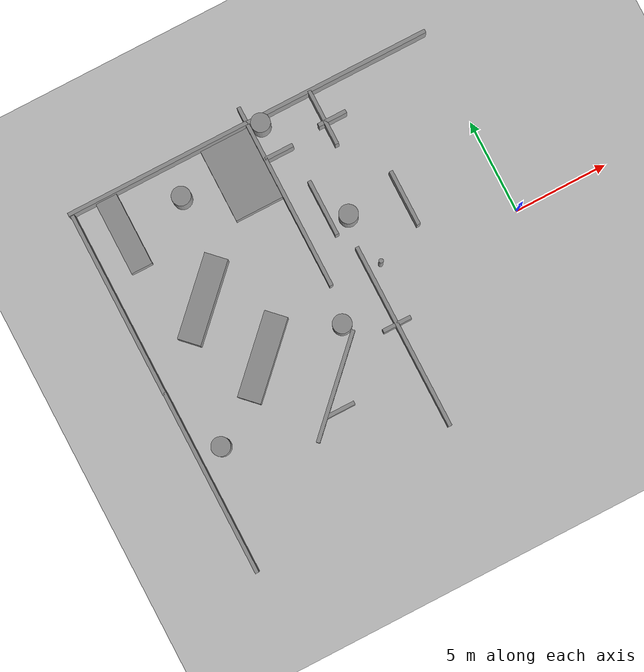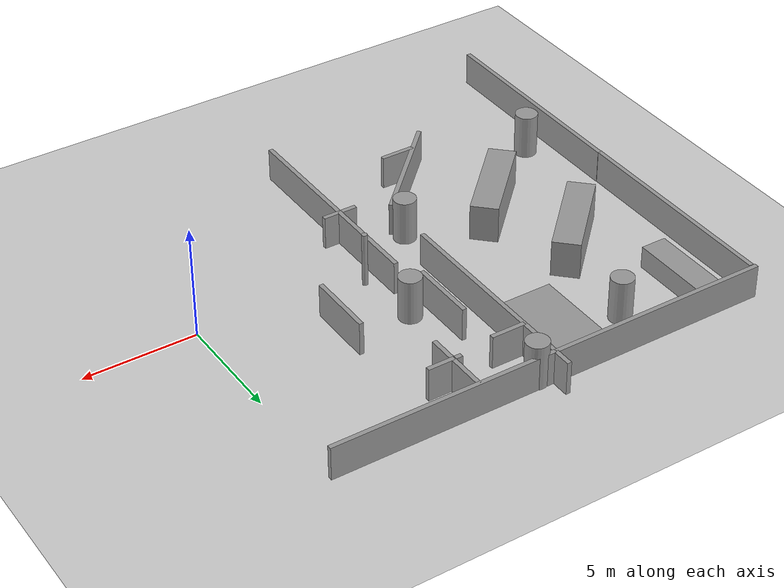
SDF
<sdf version="1.7">
 <world name="default">
  <model name="ground_plane">
   <static>1</static>
   <link name="link">
    <collision name="collision">
     <geometry><plane><normal>0 0 1</normal><size>100 100</size></plane></geometry>
     <surface><friction><ode><mu>100</mu><mu2>50</mu2></ode></friction></surface>
    </collision>
    <visual name="visual">
     <cast_shadows>0</cast_shadows>
     <geometry><plane><normal>0 0 1</normal><size>100 100</size></plane></geometry>
     <material>
      <script><uri>file://media/materials/scripts/gazebo.material</uri><name>Gazebo/Grey</name></script>
     </material>
    </visual>
   </link>
  </model>
  <model name="wall_10x3_clone">
   <link name="link">
    <inertial>
     <mass>1</mass>
     <inertia>
      <ixx>0.166667</ixx>
      <ixy>0</ixy>
      <ixz>0</ixz>
      <iyy>0.166667</iyy>
      <iyz>0</iyz>
      <izz>0.166667</izz>
     </inertia>
    </inertial>
    <visual name="visual">
     <geometry><box><size>10 0.2 1.5</size></box></geometry>
     <material>
      <script><name>Gazebo/Grey</name><uri>file://media/materials/scripts/gazebo.material</uri></script>
      <shader type="pixel"><normal_map>__default__</normal_map></shader>
      <ambient>0.3 0.3 0.3 1</ambient>
      <diffuse>0.7 0.7 0.7 1</diffuse>
      <specular>0.01 0.01 0.01 1</specular>
      <emissive>0 0 0 1</emissive>
     </material>
    </visual>
    <collision name="collision">
     <geometry><box><size>10 0.2 1.5</size></box></geometry>
     <surface>
      <friction>
       <ode><mu>1</mu><mu2>1</mu2><fdir1>0 0 0</fdir1><slip1>0</slip1><slip2>0</slip2></ode>
       <torsional>
        <coefficient>1</coefficient>
        <patch_radius>0</patch_radius>
        <surface_radius>0</surface_radius>
        <use_patch_radius>1</use_patch_radius>
        <ode><slip>0</slip></ode>
       </torsional>
      </friction>
      <bounce><restitution_coefficient>0</restitution_coefficient><threshold>1e+06</threshold></bounce>
      <contact>
       <collide_without_contact>0</collide_without_contact>
       <collide_without_contact_bitmask>1</collide_without_contact_bitmask>
       <collide_bitmask>1</collide_bitmask>
       <ode>
        <soft_cfm>0</soft_cfm>
        <soft_erp>0.2</soft_erp>
        <kp>1e+13</kp>
        <kd>1</kd>
        <max_vel>0.01</max_vel>
        <min_depth>0</min_depth>
       </ode>
       <bullet>
        <split_impulse>1</split_impulse>
        <split_impulse_penetration_threshold>-0.01</split_impulse_penetration_threshold>
        <soft_cfm>0</soft_cfm>
        <soft_erp>0.2</soft_erp>
        <kp>1e+13</kp>
        <kd>1</kd>
       </bullet>
      </contact>
     </surface>
    </collision>
   </link>
   <static>1</static>
   <pose>-5 10 0.75 0 -0 0</pose>
  </model>
  <model name="wall_10x3_clone_3_clone">
   <link name="link">
    <inertial>
     <mass>1</mass>
     <inertia>
      <ixx>0.166667</ixx>
      <ixy>0</ixy>
      <ixz>0</ixz>
      <iyy>0.166667</iyy>
      <iyz>0</iyz>
      <izz>0.166667</izz>
     </inertia>
    </inertial>
    <visual name="visual">
     <geometry><box><size>10 0.2 1.5</size></box></geometry>
     <material>
      <script><name>Gazebo/Grey</name><uri>file://media/materials/scripts/gazebo.material</uri></script>
      <shader type="pixel"><normal_map>__default__</normal_map></shader>
      <ambient>0.3 0.3 0.3 1</ambient>
      <diffuse>0.7 0.7 0.7 1</diffuse>
      <specular>0.01 0.01 0.01 1</specular>
      <emissive>0 0 0 1</emissive>
     </material>
    </visual>
    <collision name="collision">
     <geometry><box><size>10 0.2 1.5</size></box></geometry>
     <surface>
      <friction>
       <ode><mu>1</mu><mu2>1</mu2><fdir1>0 0 0</fdir1><slip1>0</slip1><slip2>0</slip2></ode>
       <torsional>
        <coefficient>1</coefficient>
        <patch_radius>0</patch_radius>
        <surface_radius>0</surface_radius>
        <use_patch_radius>1</use_patch_radius>
        <ode><slip>0</slip></ode>
       </torsional>
      </friction>
      <bounce><restitution_coefficient>0</restitution_coefficient><threshold>1e+06</threshold></bounce>
      <contact>
       <collide_without_contact>0</collide_without_contact>
       <collide_without_contact_bitmask>1</collide_without_contact_bitmask>
       <collide_bitmask>1</collide_bitmask>
       <ode>
        <soft_cfm>0</soft_cfm>
        <soft_erp>0.2</soft_erp>
        <kp>1e+13</kp>
        <kd>1</kd>
        <max_vel>0.01</max_vel>
        <min_depth>0</min_depth>
       </ode>
       <bullet>
        <split_impulse>1</split_impulse>
        <split_impulse_penetration_threshold>-0.01</split_impulse_penetration_threshold>
        <soft_cfm>0</soft_cfm>
        <soft_erp>0.2</soft_erp>
        <kp>1e+13</kp>
        <kd>1</kd>
       </bullet>
      </contact>
     </surface>
    </collision>
   </link>
   <static>1</static>
   <pose>-10 5.88215 0.75 0 -0 1.5708</pose>
  </model>
  <model name="wall_10x3_clone_3_clone_0_clone_clone_clone_clone_6_clone">
   <link name="link">
    <inertial>
     <mass>1</mass>
     <inertia>
      <ixx>0.166667</ixx>
      <ixy>0</ixy>
      <ixz>0</ixz>
      <iyy>0.166667</iyy>
      <iyz>0</iyz>
      <izz>0.166667</izz>
     </inertia>
    </inertial>
    <visual name="visual">
     <geometry><box><size>3 0.2 1.5</size></box></geometry>
     <material>
      <script><name>Gazebo/Grey</name><uri>file://media/materials/scripts/gazebo.material</uri></script>
      <shader type="pixel"><normal_map>__default__</normal_map></shader>
      <ambient>0.3 0.3 0.3 1</ambient>
      <diffuse>0.7 0.7 0.7 1</diffuse>
      <specular>0.01 0.01 0.01 1</specular>
      <emissive>0 0 0 1</emissive>
     </material>
    </visual>
    <collision name="collision">
     <geometry><box><size>3 0.2 1.5</size></box></geometry>
     <surface>
      <friction>
       <ode><mu>1</mu><mu2>1</mu2><fdir1>0 0 0</fdir1><slip1>0</slip1><slip2>0</slip2></ode>
       <torsional>
        <coefficient>1</coefficient>
        <patch_radius>0</patch_radius>
        <surface_radius>0</surface_radius>
        <use_patch_radius>1</use_patch_radius>
        <ode><slip>0</slip></ode>
       </torsional>
      </friction>
      <bounce><restitution_coefficient>0</restitution_coefficient><threshold>1e+06</threshold></bounce>
      <contact>
       <collide_without_contact>0</collide_without_contact>
       <collide_without_contact_bitmask>1</collide_without_contact_bitmask>
       <collide_bitmask>1</collide_bitmask>
       <ode>
        <soft_cfm>0</soft_cfm>
        <soft_erp>0.2</soft_erp>
        <kp>1e+13</kp>
        <kd>1</kd>
        <max_vel>0.01</max_vel>
        <min_depth>0</min_depth>
       </ode>
       <bullet>
        <split_impulse>1</split_impulse>
        <split_impulse_penetration_threshold>-0.01</split_impulse_penetration_threshold>
        <soft_cfm>0</soft_cfm>
        <soft_erp>0.2</soft_erp>
        <kp>1e+13</kp>
        <kd>1</kd>
       </bullet>
      </contact>
     </surface>
    </collision>
   </link>
   <static>1</static>
   <pose>-8.57975 4.5 0.75 0 -0 1.5708</pose>
  </model>
  <model name="wall_10x3_clone_3_clone_0_clone_clone_clone_clone_6_clone_1">
   <link name="link">
    <inertial>
     <mass>1</mass>
     <inertia>
      <ixx>0.166667</ixx>
      <ixy>0</ixy>
      <ixz>0</ixz>
      <iyy>0.166667</iyy>
      <iyz>0</iyz>
      <izz>0.166667</izz>
     </inertia>
    </inertial>
    <visual name="visual">
     <geometry><box><size>3 0.2 1.5</size></box></geometry>
     <material>
      <script><name>Gazebo/Grey</name><uri>file://media/materials/scripts/gazebo.material</uri></script>
      <shader type="pixel"><normal_map>__default__</normal_map></shader>
      <ambient>0.3 0.3 0.3 1</ambient>
      <diffuse>0.7 0.7 0.7 1</diffuse>
      <specular>0.01 0.01 0.01 1</specular>
      <emissive>0 0 0 1</emissive>
     </material>
    </visual>
    <collision name="collision">
     <geometry><box><size>3 0.2 1.5</size></box></geometry>
     <surface>
      <friction>
       <ode><mu>1</mu><mu2>1</mu2><fdir1>0 0 0</fdir1><slip1>0</slip1><slip2>0</slip2></ode>
       <torsional>
        <coefficient>1</coefficient>
        <patch_radius>0</patch_radius>
        <surface_radius>0</surface_radius>
        <use_patch_radius>1</use_patch_radius>
        <ode><slip>0</slip></ode>
       </torsional>
      </friction>
      <bounce><restitution_coefficient>0</restitution_coefficient><threshold>1e+06</threshold></bounce>
      <contact>
       <collide_without_contact>0</collide_without_contact>
       <collide_without_contact_bitmask>1</collide_without_contact_bitmask>
       <collide_bitmask>1</collide_bitmask>
       <ode>
        <soft_cfm>0</soft_cfm>
        <soft_erp>0.2</soft_erp>
        <kp>1e+13</kp>
        <kd>1</kd>
        <max_vel>0.01</max_vel>
        <min_depth>0</min_depth>
       </ode>
       <bullet>
        <split_impulse>1</split_impulse>
        <split_impulse_penetration_threshold>-0.01</split_impulse_penetration_threshold>
        <soft_cfm>0</soft_cfm>
        <soft_erp>0.2</soft_erp>
        <kp>1e+13</kp>
        <kd>1</kd>
       </bullet>
      </contact>
     </surface>
    </collision>
   </link>
   <static>1</static>
   <pose>-6.5 8.5 0.75 0 -0 1.5708</pose>
  </model>
  <model name="wall_10x3_clone_3_clone_0_clone_clone_clone_0">
   <link name="link">
    <inertial>
     <mass>1</mass>
     <inertia>
      <ixx>0.166667</ixx>
      <ixy>0</ixy>
      <ixz>0</ixz>
      <iyy>0.166667</iyy>
      <iyz>0</iyz>
      <izz>0.166667</izz>
     </inertia>
    </inertial>
    <visual name="visual">
     <geometry><box><size>10 0.2 1.5</size></box></geometry>
     <material>
      <script><name>Gazebo/Grey</name><uri>file://media/materials/scripts/gazebo.material</uri></script>
      <shader type="pixel"><normal_map>__default__</normal_map></shader>
      <ambient>0.3 0.3 0.3 1</ambient>
      <diffuse>0.7 0.7 0.7 1</diffuse>
      <specular>0.01 0.01 0.01 1</specular>
      <emissive>0 0 0 1</emissive>
     </material>
    </visual>
    <collision name="collision">
     <geometry><box><size>10 0.2 1.5</size></box></geometry>
     <surface>
      <friction>
       <ode><mu>1</mu><mu2>1</mu2><fdir1>0 0 0</fdir1><slip1>0</slip1><slip2>0</slip2></ode>
       <torsional>
        <coefficient>1</coefficient>
        <patch_radius>0</patch_radius>
        <surface_radius>0</surface_radius>
        <use_patch_radius>1</use_patch_radius>
        <ode><slip>0</slip></ode>
       </torsional>
      </friction>
      <bounce><restitution_coefficient>0</restitution_coefficient><threshold>1e+06</threshold></bounce>
      <contact>
       <collide_without_contact>0</collide_without_contact>
       <collide_without_contact_bitmask>1</collide_without_contact_bitmask>
       <collide_bitmask>1</collide_bitmask>
       <ode>
        <soft_cfm>0</soft_cfm>
        <soft_erp>0.2</soft_erp>
        <kp>1e+13</kp>
        <kd>1</kd>
        <max_vel>0.01</max_vel>
        <min_depth>0</min_depth>
       </ode>
       <bullet>
        <split_impulse>1</split_impulse>
        <split_impulse_penetration_threshold>-0.01</split_impulse_penetration_threshold>
        <soft_cfm>0</soft_cfm>
        <soft_erp>0.2</soft_erp>
        <kp>1e+13</kp>
        <kd>1</kd>
       </bullet>
      </contact>
     </surface>
    </collision>
   </link>
   <static>1</static>
   <pose>-8 -3 0.75 0 -0 1.5708</pose>
  </model>
  <model name="wall_10x3_clone_3_clone_0_clone_clone_clone_clone_6_clone_4_clone_0">
   <link name="link">
    <inertial>
     <mass>1</mass>
     <inertia>
      <ixx>0.166667</ixx>
      <ixy>0</ixy>
      <ixz>0</ixz>
      <iyy>0.166667</iyy>
      <iyz>0</iyz>
      <izz>0.166667</izz>
     </inertia>
    </inertial>
    <visual name="visual">
     <geometry><box><size>3 0.2 1.5</size></box></geometry>
     <material>
      <script><name>Gazebo/Grey</name><uri>file://media/materials/scripts/gazebo.material</uri></script>
      <shader type="pixel"><normal_map>__default__</normal_map></shader>
      <ambient>0.3 0.3 0.3 1</ambient>
      <diffuse>0.7 0.7 0.7 1</diffuse>
      <specular>0.01 0.01 0.01 1</specular>
      <emissive>0 0 0 1</emissive>
     </material>
    </visual>
    <collision name="collision">
     <geometry><box><size>3 0.2 1.5</size></box></geometry>
     <surface>
      <friction>
       <ode><mu>1</mu><mu2>1</mu2><fdir1>0 0 0</fdir1><slip1>0</slip1><slip2>0</slip2></ode>
       <torsional>
        <coefficient>1</coefficient>
        <patch_radius>0</patch_radius>
        <surface_radius>0</surface_radius>
        <use_patch_radius>1</use_patch_radius>
        <ode><slip>0</slip></ode>
       </torsional>
      </friction>
      <bounce><restitution_coefficient>0</restitution_coefficient><threshold>1e+06</threshold></bounce>
      <contact>
       <collide_without_contact>0</collide_without_contact>
       <collide_without_contact_bitmask>1</collide_without_contact_bitmask>
       <collide_bitmask>1</collide_bitmask>
       <ode>
        <soft_cfm>0</soft_cfm>
        <soft_erp>0.2</soft_erp>
        <kp>1e+13</kp>
        <kd>1</kd>
        <max_vel>0.01</max_vel>
        <min_depth>0</min_depth>
       </ode>
       <bullet>
        <split_impulse>1</split_impulse>
        <split_impulse_penetration_threshold>-0.01</split_impulse_penetration_threshold>
        <soft_cfm>0</soft_cfm>
        <soft_erp>0.2</soft_erp>
        <kp>1e+13</kp>
        <kd>1</kd>
       </bullet>
      </contact>
     </surface>
    </collision>
   </link>
   <static>1</static>
   <pose>-4.75943 3.07419 0.75 0 -0 1.5708</pose>
  </model>
  <model name="wall_10x3_clone_3_clone_0_clone_clone_clone_clone_clone_0_clone_clone_6">
   <link name="link">
    <inertial>
     <mass>0.514545</mass>
     <inertia>
      <ixx>0.0981923</ixx>
      <ixy>0</ixy>
      <ixz>0</ixz>
      <iyy>0.198649</iyy>
      <iyz>0</iyz>
      <izz>0.103887</izz>
     </inertia>
    </inertial>
    <visual name="visual">
     <geometry><box><size>1.54363 0.2 1.5</size></box></geometry>
     <material>
      <script><name>Gazebo/Grey</name><uri>file://media/materials/scripts/gazebo.material</uri></script>
      <shader type="pixel"><normal_map>__default__</normal_map></shader>
      <ambient>0.3 0.3 0.3 1</ambient>
      <diffuse>0.7 0.7 0.7 1</diffuse>
      <specular>0.01 0.01 0.01 1</specular>
      <emissive>0 0 0 1</emissive>
     </material>
    </visual>
    <collision name="collision">
     <geometry><box><size>1.54363 0.2 1.5</size></box></geometry>
     <surface>
      <friction>
       <ode><mu>1</mu><mu2>1</mu2><fdir1>0 0 0</fdir1><slip1>0</slip1><slip2>0</slip2></ode>
       <torsional>
        <coefficient>1</coefficient>
        <patch_radius>0</patch_radius>
        <surface_radius>0</surface_radius>
        <use_patch_radius>1</use_patch_radius>
        <ode><slip>0</slip></ode>
       </torsional>
      </friction>
      <bounce><restitution_coefficient>0</restitution_coefficient><threshold>1e+06</threshold></bounce>
      <contact>
       <collide_without_contact>0</collide_without_contact>
       <collide_without_contact_bitmask>1</collide_without_contact_bitmask>
       <collide_bitmask>1</collide_bitmask>
       <ode>
        <soft_cfm>0</soft_cfm>
        <soft_erp>0.2</soft_erp>
        <kp>1e+13</kp>
        <kd>1</kd>
        <max_vel>0.01</max_vel>
        <min_depth>0</min_depth>
       </ode>
       <bullet>
        <split_impulse>1</split_impulse>
        <split_impulse_penetration_threshold>-0.01</split_impulse_penetration_threshold>
        <soft_cfm>0</soft_cfm>
        <soft_erp>0.2</soft_erp>
        <kp>1e+13</kp>
        <kd>1</kd>
       </bullet>
      </contact>
     </surface>
    </collision>
   </link>
   <static>1</static>
   <pose>-8.00144 -2.30721 0.75 0 -0 0</pose>
  </model>
  <model name="wall_10x3_clone_3_clone_0_clone_clone_clone_clone_clone_0_clone_clone_7">
   <link name="link">
    <inertial>
     <mass>0.514545</mass>
     <inertia>
      <ixx>0.0981923</ixx>
      <ixy>0</ixy>
      <ixz>0</ixz>
      <iyy>0.198649</iyy>
      <iyz>0</iyz>
      <izz>0.103887</izz>
     </inertia>
    </inertial>
    <visual name="visual">
     <geometry><box><size>1.54363 0.2 1.5</size></box></geometry>
     <material>
      <script><name>Gazebo/Grey</name><uri>file://media/materials/scripts/gazebo.material</uri></script>
      <shader type="pixel"><normal_map>__default__</normal_map></shader>
      <ambient>0.3 0.3 0.3 1</ambient>
      <diffuse>0.7 0.7 0.7 1</diffuse>
      <specular>0.01 0.01 0.01 1</specular>
      <emissive>0 0 0 1</emissive>
     </material>
    </visual>
    <collision name="collision">
     <geometry><box><size>1.54363 0.2 1.5</size></box></geometry>
     <surface>
      <friction>
       <ode><mu>1</mu><mu2>1</mu2><fdir1>0 0 0</fdir1><slip1>0</slip1><slip2>0</slip2></ode>
       <torsional>
        <coefficient>1</coefficient>
        <patch_radius>0</patch_radius>
        <surface_radius>0</surface_radius>
        <use_patch_radius>1</use_patch_radius>
        <ode><slip>0</slip></ode>
       </torsional>
      </friction>
      <bounce><restitution_coefficient>0</restitution_coefficient><threshold>1e+06</threshold></bounce>
      <contact>
       <collide_without_contact>0</collide_without_contact>
       <collide_without_contact_bitmask>1</collide_without_contact_bitmask>
       <collide_bitmask>1</collide_bitmask>
       <ode>
        <soft_cfm>0</soft_cfm>
        <soft_erp>0.2</soft_erp>
        <kp>1e+13</kp>
        <kd>1</kd>
        <max_vel>0.01</max_vel>
        <min_depth>0</min_depth>
       </ode>
       <bullet>
        <split_impulse>1</split_impulse>
        <split_impulse_penetration_threshold>-0.01</split_impulse_penetration_threshold>
        <soft_cfm>0</soft_cfm>
        <soft_erp>0.2</soft_erp>
        <kp>1e+13</kp>
        <kd>1</kd>
       </bullet>
      </contact>
     </surface>
    </collision>
   </link>
   <static>1</static>
   <pose>-9.24175 7.97182 0.75 0 -0 0</pose>
  </model>
  <model name="wall_10x3_clone_3_clone_0_clone_clone_clone_clone_clone_0_clone_clone_8">
   <link name="link">
    <inertial>
     <mass>0.514545</mass>
     <inertia>
      <ixx>0.0981923</ixx>
      <ixy>0</ixy>
      <ixz>0</ixz>
      <iyy>0.198649</iyy>
      <iyz>0</iyz>
      <izz>0.103887</izz>
     </inertia>
    </inertial>
    <visual name="visual">
     <geometry><box><size>1.54363 0.2 1.5</size></box></geometry>
     <material>
      <script><name>Gazebo/Grey</name><uri>file://media/materials/scripts/gazebo.material</uri></script>
      <shader type="pixel"><normal_map>__default__</normal_map></shader>
      <ambient>0.3 0.3 0.3 1</ambient>
      <diffuse>0.7 0.7 0.7 1</diffuse>
      <specular>0.01 0.01 0.01 1</specular>
      <emissive>0 0 0 1</emissive>
     </material>
    </visual>
    <collision name="collision">
     <geometry><box><size>1.54363 0.2 1.5</size></box></geometry>
     <surface>
      <friction>
       <ode><mu>1</mu><mu2>1</mu2><fdir1>0 0 0</fdir1><slip1>0</slip1><slip2>0</slip2></ode>
       <torsional>
        <coefficient>1</coefficient>
        <patch_radius>0</patch_radius>
        <surface_radius>0</surface_radius>
        <use_patch_radius>1</use_patch_radius>
        <ode><slip>0</slip></ode>
       </torsional>
      </friction>
      <bounce><restitution_coefficient>0</restitution_coefficient><threshold>1e+06</threshold></bounce>
      <contact>
       <collide_without_contact>0</collide_without_contact>
       <collide_without_contact_bitmask>1</collide_without_contact_bitmask>
       <collide_bitmask>1</collide_bitmask>
       <ode>
        <soft_cfm>0</soft_cfm>
        <soft_erp>0.2</soft_erp>
        <kp>1e+13</kp>
        <kd>1</kd>
        <max_vel>0.01</max_vel>
        <min_depth>0</min_depth>
       </ode>
       <bullet>
        <split_impulse>1</split_impulse>
        <split_impulse_penetration_threshold>-0.01</split_impulse_penetration_threshold>
        <soft_cfm>0</soft_cfm>
        <soft_erp>0.2</soft_erp>
        <kp>1e+13</kp>
        <kd>1</kd>
       </bullet>
      </contact>
     </surface>
    </collision>
   </link>
   <static>1</static>
   <pose>-6.1256 8.25743 0.75 0 -0 0</pose>
  </model>
  <model name="wall_10x3_clone_3_clone_0_clone_clone_clone_clone_clone_0_clone_clone_9">
   <link name="link">
    <inertial>
     <mass>0.514545</mass>
     <inertia>
      <ixx>0.0981923</ixx>
      <ixy>0</ixy>
      <ixz>0</ixz>
      <iyy>0.198649</iyy>
      <iyz>0</iyz>
      <izz>0.103887</izz>
     </inertia>
    </inertial>
    <visual name="visual">
     <geometry><box><size>1.54363 0.2 1.5</size></box></geometry>
     <material>
      <script><name>Gazebo/Grey</name><uri>file://media/materials/scripts/gazebo.material</uri></script>
      <shader type="pixel"><normal_map>__default__</normal_map></shader>
      <ambient>0.3 0.3 0.3 1</ambient>
      <diffuse>0.7 0.7 0.7 1</diffuse>
      <specular>0.01 0.01 0.01 1</specular>
      <emissive>0 0 0 1</emissive>
     </material>
    </visual>
    <collision name="collision">
     <geometry><box><size>1.54363 0.2 1.5</size></box></geometry>
     <surface>
      <friction>
       <ode><mu>1</mu><mu2>1</mu2><fdir1>0 0 0</fdir1><slip1>0</slip1><slip2>0</slip2></ode>
       <torsional>
        <coefficient>1</coefficient>
        <patch_radius>0</patch_radius>
        <surface_radius>0</surface_radius>
        <use_patch_radius>1</use_patch_radius>
        <ode><slip>0</slip></ode>
       </torsional>
      </friction>
      <bounce><restitution_coefficient>0</restitution_coefficient><threshold>1e+06</threshold></bounce>
      <contact>
       <collide_without_contact>0</collide_without_contact>
       <collide_without_contact_bitmask>1</collide_without_contact_bitmask>
       <collide_bitmask>1</collide_bitmask>
       <ode>
        <soft_cfm>0</soft_cfm>
        <soft_erp>0.2</soft_erp>
        <kp>1e+13</kp>
        <kd>1</kd>
        <max_vel>0.01</max_vel>
        <min_depth>0</min_depth>
       </ode>
       <bullet>
        <split_impulse>1</split_impulse>
        <split_impulse_penetration_threshold>-0.01</split_impulse_penetration_threshold>
        <soft_cfm>0</soft_cfm>
        <soft_erp>0.2</soft_erp>
        <kp>1e+13</kp>
        <kd>1</kd>
       </bullet>
      </contact>
     </surface>
    </collision>
   </link>
   <static>1</static>
   <pose>-12.4453 -4.78171 0.75 0 -0 0</pose>
  </model>
  <model name="unit_cylinder_clone_4">
   <link name="link">
    <inertial>
     <mass>1</mass>
     <inertia><ixx>0.145833</ixx><ixy>0</ixy><ixz>0</ixz><iyy>0.145833</iyy><iyz>0</iyz><izz>0.125</izz></inertia>
    </inertial>
    <visual name="visual">
     <geometry><cylinder><radius>0.5</radius><length>2</length></cylinder></geometry>
     <material>
      <script><name>Gazebo/Grey</name><uri>file://media/materials/scripts/gazebo.material</uri></script>
      <shader type="pixel"><normal_map>__default__</normal_map></shader>
      <ambient>0.3 0.3 0.3 1</ambient>
      <diffuse>0.7 0.7 0.7 1</diffuse>
      <specular>0.01 0.01 0.01 1</specular>
      <emissive>0 0 0 1</emissive>
     </material>
    </visual>
    <collision name="collision">
     <geometry><cylinder><radius>0.5</radius><length>2</length></cylinder></geometry>
     <surface>
      <friction>
       <ode><mu>1</mu><mu2>1</mu2><fdir1>0 0 0</fdir1><slip1>0</slip1><slip2>0</slip2></ode>
       <torsional>
        <coefficient>1</coefficient>
        <patch_radius>0</patch_radius>
        <surface_radius>0</surface_radius>
        <use_patch_radius>1</use_patch_radius>
        <ode><slip>0</slip></ode>
       </torsional>
      </friction>
      <bounce><restitution_coefficient>0</restitution_coefficient><threshold>1e+06</threshold></bounce>
      <contact>
       <collide_without_contact>0</collide_without_contact>
       <collide_without_contact_bitmask>1</collide_without_contact_bitmask>
       <collide_bitmask>1</collide_bitmask>
       <ode>
        <soft_cfm>0</soft_cfm>
        <soft_erp>0.2</soft_erp>
        <kp>1e+13</kp>
        <kd>1</kd>
        <max_vel>0.01</max_vel>
        <min_depth>0</min_depth>
       </ode>
       <bullet>
        <split_impulse>1</split_impulse>
        <split_impulse_penetration_threshold>-0.01</split_impulse_penetration_threshold>
        <soft_cfm>0</soft_cfm>
        <soft_erp>0.2</soft_erp>
        <kp>1e+13</kp>
        <kd>1</kd>
       </bullet>
      </contact>
     </surface>
    </collision>
   </link>
   <static>0</static>
   <pose>-9.4 9.64357 0.999994 0 0 -0.038915</pose>
  </model>
  <model name="unit_cylinder_clone_15">
   <link name="link">
    <inertial>
     <mass>1</mass>
     <inertia><ixx>0.145833</ixx><ixy>0</ixy><ixz>0</ixz><iyy>0.145833</iyy><iyz>0</iyz><izz>0.125</izz></inertia>
    </inertial>
    <visual name="visual">
     <geometry><cylinder><radius>0.5</radius><length>2</length></cylinder></geometry>
     <material>
      <script><name>Gazebo/Grey</name><uri>file://media/materials/scripts/gazebo.material</uri></script>
      <shader type="pixel"><normal_map>__default__</normal_map></shader>
      <ambient>0.3 0.3 0.3 1</ambient>
      <diffuse>0.7 0.7 0.7 1</diffuse>
      <specular>0.01 0.01 0.01 1</specular>
      <emissive>0 0 0 1</emissive>
     </material>
    </visual>
    <collision name="collision">
     <geometry><cylinder><radius>0.5</radius><length>2</length></cylinder></geometry>
     <surface>
      <friction>
       <ode><mu>1</mu><mu2>1</mu2><fdir1>0 0 0</fdir1><slip1>0</slip1><slip2>0</slip2></ode>
       <torsional>
        <coefficient>1</coefficient>
        <patch_radius>0</patch_radius>
        <surface_radius>0</surface_radius>
        <use_patch_radius>1</use_patch_radius>
        <ode><slip>0</slip></ode>
       </torsional>
      </friction>
      <bounce><restitution_coefficient>0</restitution_coefficient><threshold>1e+06</threshold></bounce>
      <contact>
       <collide_without_contact>0</collide_without_contact>
       <collide_without_contact_bitmask>1</collide_without_contact_bitmask>
       <collide_bitmask>1</collide_bitmask>
       <ode>
        <soft_cfm>0</soft_cfm>
        <soft_erp>0.2</soft_erp>
        <kp>1e+13</kp>
        <kd>1</kd>
        <max_vel>0.01</max_vel>
        <min_depth>0</min_depth>
       </ode>
       <bullet>
        <split_impulse>1</split_impulse>
        <split_impulse_penetration_threshold>-0.01</split_impulse_penetration_threshold>
        <soft_cfm>0</soft_cfm>
        <soft_erp>0.2</soft_erp>
        <kp>1e+13</kp>
        <kd>1</kd>
       </bullet>
      </contact>
     </surface>
    </collision>
   </link>
   <static>0</static>
   <pose>-10.4155 -1.06943 0.999993 0 -0 0.06651</pose>
  </model>
  <model name="unit_cylinder_clone_16">
   <link name="link">
    <inertial>
     <mass>1</mass>
     <inertia><ixx>0.145833</ixx><ixy>0</ixy><ixz>0</ixz><iyy>0.145833</iyy><iyz>0</iyz><izz>0.125</izz></inertia>
    </inertial>
    <visual name="visual">
     <geometry><cylinder><radius>0.5</radius><length>2</length></cylinder></geometry>
     <material>
      <script><name>Gazebo/Grey</name><uri>file://media/materials/scripts/gazebo.material</uri></script>
      <shader type="pixel"><normal_map>__default__</normal_map></shader>
      <ambient>0.3 0.3 0.3 1</ambient>
      <diffuse>0.7 0.7 0.7 1</diffuse>
      <specular>0.01 0.01 0.01 1</specular>
      <emissive>0 0 0 1</emissive>
     </material>
    </visual>
    <collision name="collision">
     <geometry><cylinder><radius>0.5</radius><length>2</length></cylinder></geometry>
     <surface>
      <friction>
       <ode><mu>1</mu><mu2>1</mu2><fdir1>0 0 0</fdir1><slip1>0</slip1><slip2>0</slip2></ode>
       <torsional>
        <coefficient>1</coefficient>
        <patch_radius>0</patch_radius>
        <surface_radius>0</surface_radius>
        <use_patch_radius>1</use_patch_radius>
        <ode><slip>0</slip></ode>
       </torsional>
      </friction>
      <bounce><restitution_coefficient>0</restitution_coefficient><threshold>1e+06</threshold></bounce>
      <contact>
       <collide_without_contact>0</collide_without_contact>
       <collide_without_contact_bitmask>1</collide_without_contact_bitmask>
       <collide_bitmask>1</collide_bitmask>
       <ode>
        <soft_cfm>0</soft_cfm>
        <soft_erp>0.2</soft_erp>
        <kp>1e+13</kp>
        <kd>1</kd>
        <max_vel>0.01</max_vel>
        <min_depth>0</min_depth>
       </ode>
       <bullet>
        <split_impulse>1</split_impulse>
        <split_impulse_penetration_threshold>-0.01</split_impulse_penetration_threshold>
        <soft_cfm>0</soft_cfm>
        <soft_erp>0.2</soft_erp>
        <kp>1e+13</kp>
        <kd>1</kd>
       </bullet>
      </contact>
     </surface>
    </collision>
   </link>
   <static>0</static>
   <pose>-7.62958 3.60394 0.999997 -0 -0 -0.001046</pose>
  </model>
  <model name="wall_10x3_clone_3_clone_0_clone_0_clone_0">
   <link name="link">
    <inertial>
     <mass>1</mass>
     <inertia>
      <ixx>0.166667</ixx>
      <ixy>0</ixy>
      <ixz>0</ixz>
      <iyy>0.166667</iyy>
      <iyz>0</iyz>
      <izz>0.166667</izz>
     </inertia>
    </inertial>
    <visual name="visual">
     <geometry><box><size>10 0.2 1.5</size></box></geometry>
     <material>
      <script><name>Gazebo/Grey</name><uri>file://media/materials/scripts/gazebo.material</uri></script>
      <shader type="pixel"><normal_map>__default__</normal_map></shader>
      <ambient>0.3 0.3 0.3 1</ambient>
      <diffuse>0.7 0.7 0.7 1</diffuse>
      <specular>0.01 0.01 0.01 1</specular>
      <emissive>0 0 0 1</emissive>
     </material>
    </visual>
    <collision name="collision">
     <geometry><box><size>10 0.2 1.5</size></box></geometry>
     <surface>
      <friction>
       <ode><mu>1</mu><mu2>1</mu2><fdir1>0 0 0</fdir1><slip1>0</slip1><slip2>0</slip2></ode>
       <torsional>
        <coefficient>1</coefficient>
        <patch_radius>0</patch_radius>
        <surface_radius>0</surface_radius>
        <use_patch_radius>1</use_patch_radius>
        <ode><slip>0</slip></ode>
       </torsional>
      </friction>
      <bounce><restitution_coefficient>0</restitution_coefficient><threshold>1e+06</threshold></bounce>
      <contact>
       <collide_without_contact>0</collide_without_contact>
       <collide_without_contact_bitmask>1</collide_without_contact_bitmask>
       <collide_bitmask>1</collide_bitmask>
       <ode>
        <soft_cfm>0</soft_cfm>
        <soft_erp>0.2</soft_erp>
        <kp>1e+13</kp>
        <kd>1</kd>
        <max_vel>0.01</max_vel>
        <min_depth>0</min_depth>
       </ode>
       <bullet>
        <split_impulse>1</split_impulse>
        <split_impulse_penetration_threshold>-0.01</split_impulse_penetration_threshold>
        <soft_cfm>0</soft_cfm>
        <soft_erp>0.2</soft_erp>
        <kp>1e+13</kp>
        <kd>1</kd>
       </bullet>
      </contact>
     </surface>
    </collision>
   </link>
   <static>1</static>
   <pose>-19.7843 -5.01523 0.75 0 -0 1.5708</pose>
  </model>
  <model name="wall_10x3_clone_2_clone_0_clone">
   <link name="link">
    <inertial>
     <mass>1</mass>
     <inertia>
      <ixx>0.166667</ixx>
      <ixy>0</ixy>
      <ixz>0</ixz>
      <iyy>0.166667</iyy>
      <iyz>0</iyz>
      <izz>0.166667</izz>
     </inertia>
    </inertial>
    <visual name="visual">
     <geometry><box><size>10 0.2 1.5</size></box></geometry>
     <material>
      <script><name>Gazebo/Grey</name><uri>file://media/materials/scripts/gazebo.material</uri></script>
      <shader type="pixel"><normal_map>__default__</normal_map></shader>
      <ambient>0.3 0.3 0.3 1</ambient>
      <diffuse>0.7 0.7 0.7 1</diffuse>
      <specular>0.01 0.01 0.01 1</specular>
      <emissive>0 0 0 1</emissive>
     </material>
    </visual>
    <collision name="collision">
     <geometry><box><size>10 0.2 1.5</size></box></geometry>
     <surface>
      <friction>
       <ode><mu>1</mu><mu2>1</mu2><fdir1>0 0 0</fdir1><slip1>0</slip1><slip2>0</slip2></ode>
       <torsional>
        <coefficient>1</coefficient>
        <patch_radius>0</patch_radius>
        <surface_radius>0</surface_radius>
        <use_patch_radius>1</use_patch_radius>
        <ode><slip>0</slip></ode>
       </torsional>
      </friction>
      <bounce><restitution_coefficient>0</restitution_coefficient><threshold>1e+06</threshold></bounce>
      <contact>
       <collide_without_contact>0</collide_without_contact>
       <collide_without_contact_bitmask>1</collide_without_contact_bitmask>
       <collide_bitmask>1</collide_bitmask>
       <ode>
        <soft_cfm>0</soft_cfm>
        <soft_erp>0.2</soft_erp>
        <kp>1e+13</kp>
        <kd>1</kd>
        <max_vel>0.01</max_vel>
        <min_depth>0</min_depth>
       </ode>
       <bullet>
        <split_impulse>1</split_impulse>
        <split_impulse_penetration_threshold>-0.01</split_impulse_penetration_threshold>
        <soft_cfm>0</soft_cfm>
        <soft_erp>0.2</soft_erp>
        <kp>1e+13</kp>
        <kd>1</kd>
       </bullet>
      </contact>
     </surface>
    </collision>
   </link>
   <static>1</static>
   <pose>-14.9588 10.0156 0.75 0 -0 0</pose>
  </model>
  <model name="wall_10x3_clone_3_clone_0_clone_0_clone_0_clone">
   <link name="link">
    <inertial>
     <mass>1</mass>
     <inertia>
      <ixx>0.166667</ixx>
      <ixy>0</ixy>
      <ixz>0</ixz>
      <iyy>0.166667</iyy>
      <iyz>0</iyz>
      <izz>0.166667</izz>
     </inertia>
    </inertial>
    <visual name="visual">
     <geometry><box><size>10 0.2 1.5</size></box></geometry>
     <material>
      <script><name>Gazebo/Grey</name><uri>file://media/materials/scripts/gazebo.material</uri></script>
      <shader type="pixel"><normal_map>__default__</normal_map></shader>
      <ambient>0.3 0.3 0.3 1</ambient>
      <diffuse>0.7 0.7 0.7 1</diffuse>
      <specular>0.01 0.01 0.01 1</specular>
      <emissive>0 0 0 1</emissive>
     </material>
    </visual>
    <collision name="collision">
     <geometry><box><size>10 0.2 1.5</size></box></geometry>
     <surface>
      <friction>
       <ode><mu>1</mu><mu2>1</mu2><fdir1>0 0 0</fdir1><slip1>0</slip1><slip2>0</slip2></ode>
       <torsional>
        <coefficient>1</coefficient>
        <patch_radius>0</patch_radius>
        <surface_radius>0</surface_radius>
        <use_patch_radius>1</use_patch_radius>
        <ode><slip>0</slip></ode>
       </torsional>
      </friction>
      <bounce><restitution_coefficient>0</restitution_coefficient><threshold>1e+06</threshold></bounce>
      <contact>
       <collide_without_contact>0</collide_without_contact>
       <collide_without_contact_bitmask>1</collide_without_contact_bitmask>
       <collide_bitmask>1</collide_bitmask>
       <ode>
        <soft_cfm>0</soft_cfm>
        <soft_erp>0.2</soft_erp>
        <kp>1e+13</kp>
        <kd>1</kd>
        <max_vel>0.01</max_vel>
        <min_depth>0</min_depth>
       </ode>
       <bullet>
        <split_impulse>1</split_impulse>
        <split_impulse_penetration_threshold>-0.01</split_impulse_penetration_threshold>
        <soft_cfm>0</soft_cfm>
        <soft_erp>0.2</soft_erp>
        <kp>1e+13</kp>
        <kd>1</kd>
       </bullet>
      </contact>
     </surface>
    </collision>
   </link>
   <static>1</static>
   <pose>-19.7998 4.88697 0.75 0 -0 1.5708</pose>
  </model>
  <model name="unit_box_clone_5">
   <pose>-11.3995 7.89122 0.499343 -0.000338 0 5.7e-05</pose>
   <link name="link">
    <inertial>
     <mass>1</mass>
     <inertia>
      <ixx>0.166667</ixx>
      <ixy>0</ixy>
      <ixz>0</ixz>
      <iyy>0.166667</iyy>
      <iyz>0</iyz>
      <izz>0.166667</izz>
     </inertia>
    </inertial>
    <collision name="collision"><geometry><box><size>2.59699 3.89572 1</size></box></geometry></collision>
    <visual name="visual">
     <geometry><box><size>2.59699 3.89572 1</size></box></geometry>
     <material>
      <script><name>Gazebo/Grey</name><uri>file://media/materials/scripts/gazebo.material</uri></script>
     </material>
    </visual>
   </link>
  </model>
  <model name="unit_cylinder_0_clone_8">
   <pose>-7.29486 0.773571 1.23089 0 0 -0.032986</pose>
   <link name="link">
    <inertial>
     <mass>1</mass>
     <inertia><ixx>0.145833</ixx><ixy>0</ixy><ixz>0</ixz><iyy>0.145833</iyy><iyz>0</iyz><izz>0.125</izz></inertia>
    </inertial>
    <collision name="collision">
     <geometry><cylinder><radius>0.120231</radius><length>2.46178</length></cylinder></geometry>
    </collision>
    <visual name="visual">
     <geometry><cylinder><radius>0.120231</radius><length>2.46178</length></cylinder></geometry>
     <material>
      <script><name>Gazebo/Grey</name><uri>file://media/materials/scripts/gazebo.material</uri></script>
     </material>
    </visual>
   </link>
  </model>
  <model name="wall_10x3_clone_3_clone_2">
   <link name="link">
    <inertial>
     <mass>1</mass>
     <inertia>
      <ixx>0.166667</ixx>
      <ixy>0</ixy>
      <ixz>0</ixz>
      <iyy>0.166667</iyy>
      <iyz>0</iyz>
      <izz>0.166667</izz>
     </inertia>
    </inertial>
    <visual name="visual">
     <geometry><box><size>5.84389 0.2 1.5</size></box></geometry>
     <material>
      <script><name>Gazebo/Grey</name><uri>file://media/materials/scripts/gazebo.material</uri></script>
      <shader type="pixel"><normal_map>__default__</normal_map></shader>
      <ambient>0.3 0.3 0.3 1</ambient>
      <diffuse>0.7 0.7 0.7 1</diffuse>
      <specular>0.01 0.01 0.01 1</specular>
      <emissive>0 0 0 1</emissive>
     </material>
    </visual>
    <collision name="collision">
     <geometry><box><size>5.84389 0.2 1.5</size></box></geometry>
     <surface>
      <friction>
       <ode><mu>1</mu><mu2>1</mu2><fdir1>0 0 0</fdir1><slip1>0</slip1><slip2>0</slip2></ode>
       <torsional>
        <coefficient>1</coefficient>
        <patch_radius>0</patch_radius>
        <surface_radius>0</surface_radius>
        <use_patch_radius>1</use_patch_radius>
        <ode><slip>0</slip></ode>
       </torsional>
      </friction>
      <bounce><restitution_coefficient>0</restitution_coefficient><threshold>1e+06</threshold></bounce>
      <contact>
       <collide_without_contact>0</collide_without_contact>
       <collide_without_contact_bitmask>1</collide_without_contact_bitmask>
       <collide_bitmask>1</collide_bitmask>
       <ode>
        <soft_cfm>0</soft_cfm>
        <soft_erp>0.2</soft_erp>
        <kp>1e+13</kp>
        <kd>1</kd>
        <max_vel>0.01</max_vel>
        <min_depth>0</min_depth>
       </ode>
       <bullet>
        <split_impulse>1</split_impulse>
        <split_impulse_penetration_threshold>-0.01</split_impulse_penetration_threshold>
        <soft_cfm>0</soft_cfm>
        <soft_erp>0.2</soft_erp>
        <kp>1e+13</kp>
        <kd>1</kd>
       </bullet>
      </contact>
     </surface>
    </collision>
   </link>
   <static>1</static>
   <pose>-12.121 -3.63491 0.75 0 -0 0.788089</pose>
  </model>
  <model name="wall_10x3_clone_3_clone_2_clone_0_clone">
   <link name="link">
    <inertial>
     <mass>1</mass>
     <inertia>
      <ixx>0.166667</ixx>
      <ixy>0</ixy>
      <ixz>0</ixz>
      <iyy>0.166667</iyy>
      <iyz>0</iyz>
      <izz>0.166667</izz>
     </inertia>
    </inertial>
    <visual name="visual">
     <geometry><box><size>4.49545 1.21736 1.77624</size></box></geometry>
     <material>
      <script><name>Gazebo/Grey</name><uri>file://media/materials/scripts/gazebo.material</uri></script>
      <shader type="pixel"><normal_map>__default__</normal_map></shader>
      <ambient>0.3 0.3 0.3 1</ambient>
      <diffuse>0.7 0.7 0.7 1</diffuse>
      <specular>0.01 0.01 0.01 1</specular>
      <emissive>0 0 0 1</emissive>
     </material>
    </visual>
    <collision name="collision">
     <geometry><box><size>4.49545 1.21736 1.77624</size></box></geometry>
     <surface>
      <friction>
       <ode><mu>1</mu><mu2>1</mu2><fdir1>0 0 0</fdir1><slip1>0</slip1><slip2>0</slip2></ode>
       <torsional>
        <coefficient>1</coefficient>
        <patch_radius>0</patch_radius>
        <surface_radius>0</surface_radius>
        <use_patch_radius>1</use_patch_radius>
        <ode><slip>0</slip></ode>
       </torsional>
      </friction>
      <bounce><restitution_coefficient>0</restitution_coefficient><threshold>1e+06</threshold></bounce>
      <contact>
       <collide_without_contact>0</collide_without_contact>
       <collide_without_contact_bitmask>1</collide_without_contact_bitmask>
       <collide_bitmask>1</collide_bitmask>
       <ode>
        <soft_cfm>0</soft_cfm>
        <soft_erp>0.2</soft_erp>
        <kp>1e+13</kp>
        <kd>1</kd>
        <max_vel>0.01</max_vel>
        <min_depth>0</min_depth>
       </ode>
       <bullet>
        <split_impulse>1</split_impulse>
        <split_impulse_penetration_threshold>-0.01</split_impulse_penetration_threshold>
        <soft_cfm>0</soft_cfm>
        <soft_erp>0.2</soft_erp>
        <kp>1e+13</kp>
        <kd>1</kd>
       </bullet>
      </contact>
     </surface>
    </collision>
   </link>
   <static>1</static>
   <pose>-15.9663 3.21715 0.75 0 -0 0.788089</pose>
  </model>
  <model name="unit_box_clone_5_clone">
   <pose>-17.9507 7.95374 0.499343 0.000338 -0 2e-06</pose>
   <link name="link">
    <inertial>
     <mass>1</mass>
     <inertia>
      <ixx>0.166667</ixx>
      <ixy>0</ixy>
      <ixz>0</ixz>
      <iyy>0.166667</iyy>
      <iyz>0</iyz>
      <izz>0.166667</izz>
     </inertia>
    </inertial>
    <collision name="collision"><geometry><box><size>1.149 3.89572 1</size></box></geometry></collision>
    <visual name="visual">
     <geometry><box><size>1.149 3.89572 1</size></box></geometry>
     <material>
      <script><name>Gazebo/Grey</name><uri>file://media/materials/scripts/gazebo.material</uri></script>
     </material>
    </visual>
   </link>
  </model>
  <model name="unit_cylinder_clone_15_clone">
   <link name="link">
    <inertial>
     <mass>1</mass>
     <inertia><ixx>0.145833</ixx><ixy>0</ixy><ixz>0</ixz><iyy>0.145833</iyy><iyz>0</iyz><izz>0.125</izz></inertia>
    </inertial>
    <visual name="visual">
     <geometry><cylinder><radius>0.5</radius><length>2</length></cylinder></geometry>
     <material>
      <script><name>Gazebo/Grey</name><uri>file://media/materials/scripts/gazebo.material</uri></script>
      <shader type="pixel"><normal_map>__default__</normal_map></shader>
      <ambient>0.3 0.3 0.3 1</ambient>
      <diffuse>0.7 0.7 0.7 1</diffuse>
      <specular>0.01 0.01 0.01 1</specular>
      <emissive>0 0 0 1</emissive>
     </material>
    </visual>
    <collision name="collision">
     <geometry><cylinder><radius>0.5</radius><length>2</length></cylinder></geometry>
     <surface>
      <friction>
       <ode><mu>1</mu><mu2>1</mu2><fdir1>0 0 0</fdir1><slip1>0</slip1><slip2>0</slip2></ode>
       <torsional>
        <coefficient>1</coefficient>
        <patch_radius>0</patch_radius>
        <surface_radius>0</surface_radius>
        <use_patch_radius>1</use_patch_radius>
        <ode><slip>0</slip></ode>
       </torsional>
      </friction>
      <bounce><restitution_coefficient>0</restitution_coefficient><threshold>1e+06</threshold></bounce>
      <contact>
       <collide_without_contact>0</collide_without_contact>
       <collide_without_contact_bitmask>1</collide_without_contact_bitmask>
       <collide_bitmask>1</collide_bitmask>
       <ode>
        <soft_cfm>0</soft_cfm>
        <soft_erp>0.2</soft_erp>
        <kp>1e+13</kp>
        <kd>1</kd>
        <max_vel>0.01</max_vel>
        <min_depth>0</min_depth>
       </ode>
       <bullet>
        <split_impulse>1</split_impulse>
        <split_impulse_penetration_threshold>-0.01</split_impulse_penetration_threshold>
        <soft_cfm>0</soft_cfm>
        <soft_erp>0.2</soft_erp>
        <kp>1e+13</kp>
        <kd>1</kd>
       </bullet>
      </contact>
     </surface>
    </collision>
   </link>
   <static>0</static>
   <pose>-18.5049 -3.67311 0.999997 0 -0 0.066511</pose>
  </model>
  <model name="unit_cylinder_clone_15_clone_1">
   <link name="link">
    <inertial>
     <mass>1</mass>
     <inertia><ixx>0.145833</ixx><ixy>0</ixy><ixz>0</ixz><iyy>0.145833</iyy><iyz>0</iyz><izz>0.125</izz></inertia>
    </inertial>
    <visual name="visual">
     <geometry><cylinder><radius>0.5</radius><length>2</length></cylinder></geometry>
     <material>
      <script><name>Gazebo/Grey</name><uri>file://media/materials/scripts/gazebo.material</uri></script>
      <shader type="pixel"><normal_map>__default__</normal_map></shader>
      <ambient>0.3 0.3 0.3 1</ambient>
      <diffuse>0.7 0.7 0.7 1</diffuse>
      <specular>0.01 0.01 0.01 1</specular>
      <emissive>0 0 0 1</emissive>
     </material>
    </visual>
    <collision name="collision">
     <geometry><cylinder><radius>0.5</radius><length>2</length></cylinder></geometry>
     <surface>
      <friction>
       <ode><mu>1</mu><mu2>1</mu2><fdir1>0 0 0</fdir1><slip1>0</slip1><slip2>0</slip2></ode>
       <torsional>
        <coefficient>1</coefficient>
        <patch_radius>0</patch_radius>
        <surface_radius>0</surface_radius>
        <use_patch_radius>1</use_patch_radius>
        <ode><slip>0</slip></ode>
       </torsional>
      </friction>
      <bounce><restitution_coefficient>0</restitution_coefficient><threshold>1e+06</threshold></bounce>
      <contact>
       <collide_without_contact>0</collide_without_contact>
       <collide_without_contact_bitmask>1</collide_without_contact_bitmask>
       <collide_bitmask>1</collide_bitmask>
       <ode>
        <soft_cfm>0</soft_cfm>
        <soft_erp>0.2</soft_erp>
        <kp>1e+13</kp>
        <kd>1</kd>
        <max_vel>0.01</max_vel>
        <min_depth>0</min_depth>
       </ode>
       <bullet>
        <split_impulse>1</split_impulse>
        <split_impulse_penetration_threshold>-0.01</split_impulse_penetration_threshold>
        <soft_cfm>0</soft_cfm>
        <soft_erp>0.2</soft_erp>
        <kp>1e+13</kp>
        <kd>1</kd>
       </bullet>
      </contact>
     </surface>
    </collision>
   </link>
   <static>0</static>
   <pose>-14.5633 8.21612 0.999997 0 -0 0.066511</pose>
  </model>
  <model name="wall_10x3_clone_3_clone_2_clone_0_clone_clone">
   <link name="link">
    <inertial>
     <mass>1</mass>
     <inertia>
      <ixx>0.166667</ixx>
      <ixy>0</ixy>
      <ixz>0</ixz>
      <iyy>0.166667</iyy>
      <iyz>0</iyz>
      <izz>0.166667</izz>
     </inertia>
    </inertial>
    <visual name="visual">
     <geometry><box><size>4.49545 1.21736 1.77624</size></box></geometry>
     <material>
      <script><name>Gazebo/Grey</name><uri>file://media/materials/scripts/gazebo.material</uri></script>
      <shader type="pixel"><normal_map>__default__</normal_map></shader>
      <ambient>0.3 0.3 0.3 1</ambient>
      <diffuse>0.7 0.7 0.7 1</diffuse>
      <specular>0.01 0.01 0.01 1</specular>
      <emissive>0 0 0 1</emissive>
     </material>
    </visual>
    <collision name="collision">
     <geometry><box><size>4.49545 1.21736 1.77624</size></box></geometry>
     <surface>
      <friction>
       <ode><mu>1</mu><mu2>1</mu2><fdir1>0 0 0</fdir1><slip1>0</slip1><slip2>0</slip2></ode>
       <torsional>
        <coefficient>1</coefficient>
        <patch_radius>0</patch_radius>
        <surface_radius>0</surface_radius>
        <use_patch_radius>1</use_patch_radius>
        <ode><slip>0</slip></ode>
       </torsional>
      </friction>
      <bounce><restitution_coefficient>0</restitution_coefficient><threshold>1e+06</threshold></bounce>
      <contact>
       <collide_without_contact>0</collide_without_contact>
       <collide_without_contact_bitmask>1</collide_without_contact_bitmask>
       <collide_bitmask>1</collide_bitmask>
       <ode>
        <soft_cfm>0</soft_cfm>
        <soft_erp>0.2</soft_erp>
        <kp>1e+13</kp>
        <kd>1</kd>
        <max_vel>0.01</max_vel>
        <min_depth>0</min_depth>
       </ode>
       <bullet>
        <split_impulse>1</split_impulse>
        <split_impulse_penetration_threshold>-0.01</split_impulse_penetration_threshold>
        <soft_cfm>0</soft_cfm>
        <soft_erp>0.2</soft_erp>
        <kp>1e+13</kp>
        <kd>1</kd>
       </bullet>
      </contact>
     </surface>
    </collision>
   </link>
   <static>1</static>
   <pose>-14.6557 -0.70238 0.75 0 -0 0.788089</pose>
  </model>
 </world>
</sdf>
